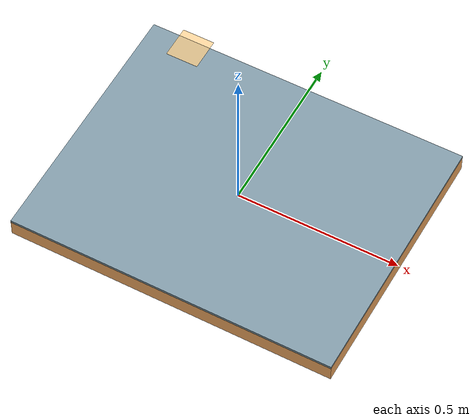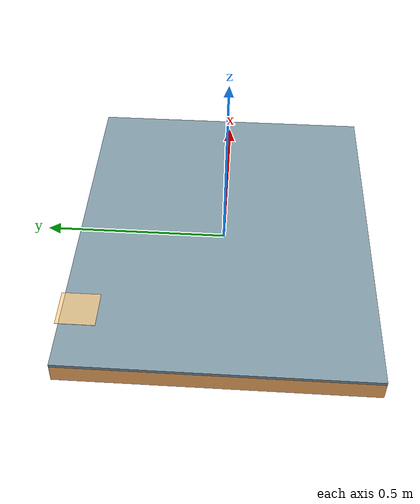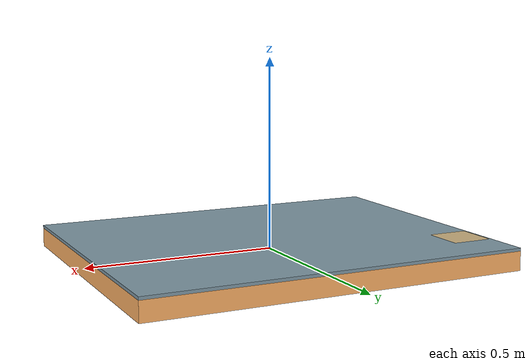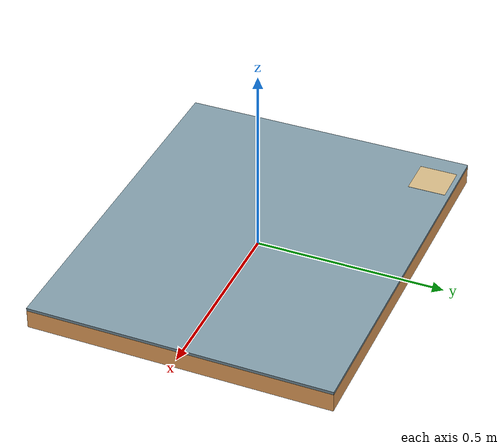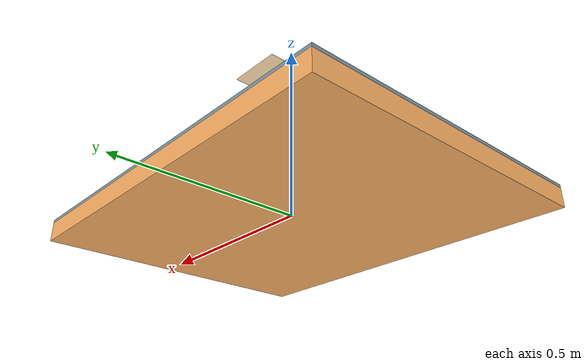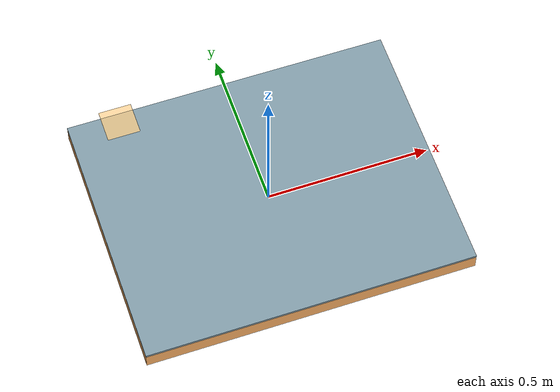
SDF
<?xml version='1.0'?>
<sdf version='1.6'>
  <model name='air_cushion'>
    <static>true</static>
    <pose>0 0 0 0 0 0</pose>

    <link name='foam_base'>
      <pose>0 0 0 0 0 0</pose>
      <collision name='foam_collision'>
        <geometry>
          <box><size>1.0 0.8 0.05</size></box>
        </geometry>
      </collision>
      <visual name='foam_visual'>
        <geometry>
          <box><size>1.0 0.8 0.05</size></box>
        </geometry>
        <material>
          <ambient>1.0 0.7 0.4 1</ambient>
          <diffuse>1.0 0.7 0.4 1</diffuse>
        </material>
      </visual>
    </link>

    <link name='base_plate'>
      <pose>0 0 0.029 0 0 0</pose>
      <collision name='base_collision'>
        <geometry>
          <box><size>1.0 0.8 0.008</size></box>
        </geometry>
      </collision>
      <visual name='base_visual'>
        <geometry>
          <box><size>1.0 0.8 0.008</size></box>
        </geometry>
        <material>
          <ambient>0.5 0.6 0.65 1</ambient>
          <diffuse>0.5 0.6 0.65 1</diffuse>
        </material>
      </visual>
    </link>

    <link name='cell_0'>
      <pose>-0.35 0.35 0.066 0 0 0</pose>
      <collision name='c0_collision'>
        <geometry>
          <box><size>0.10 0.10 0.001</size></box>
        </geometry>
      </collision>
      <visual name='c0_visual'>
        <geometry>
          <box><size>0.10 0.10 0.001</size></box>
        </geometry>
        <material>
          <ambient>1.0 0.8 0.5 0.7</ambient>
          <diffuse>1.0 0.8 0.5 0.7</diffuse>
        </material>
      </visual>
    </link>

    <link name='sacrum_sensor'>
      <sensor name='sacrum_pressure' type='altimeter'>
        <pose>0 0 0.083 0 0 0</pose>
        <update_rate>10</update_rate>
        <altimeter>
          <vertical_position>0.083</vertical_position>
        </altimeter>
        <plugin name='cushion_plugin' filename='cushion_plugin.so'>
          <n_cells>64</n_cells>
          <rows>8</rows>
          <cols>8</cols>
          <max_pressure>80.0</max_pressure>
          <response_time>0.3</response_time>
          <topic_pressure>/cushion/pressure</topic_pressure>
          <topic_cmd>/cushion/cmd</topic_cmd>
        </plugin>
      </sensor>
    </link>

  </model>
</sdf>
